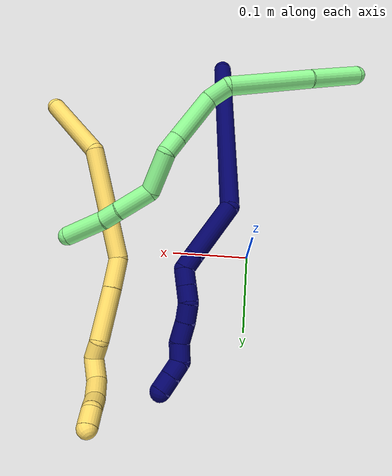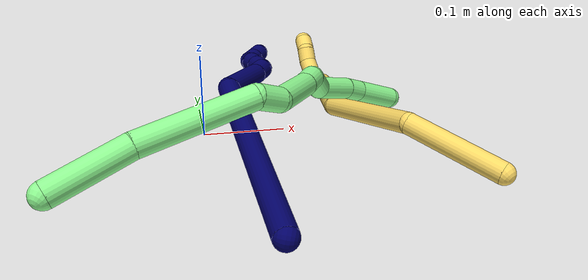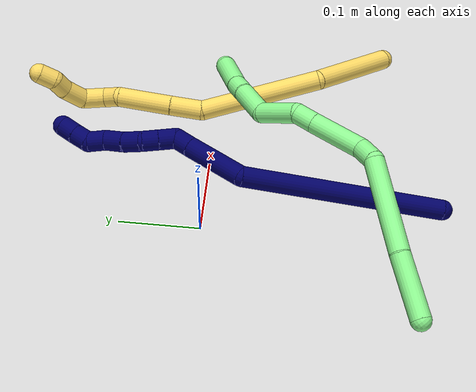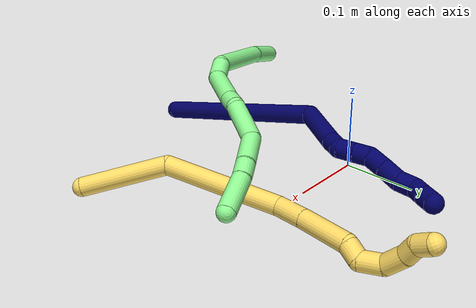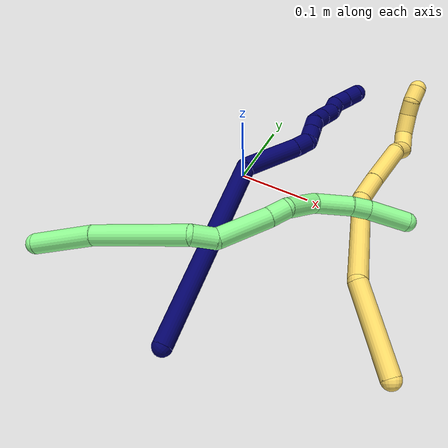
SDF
<sdf version="1.7">
 <world name="default">
  <model name="photoneo_s_sensor">
   <static>1</static>
   <pose>0 0 2 1.57079 1.57079 3.14159</pose>
   <link name="link">
    <inertial><mass>0.1</mass></inertial>
    <sensor name="sensor" type="depth">
     <update_rate>30</update_rate>
     <camera>
      <horizontal_fov>1.22</horizontal_fov>
      <image><width>1920</width><height>1200</height><format>B8G8R8</format></image>
      <clip><near>0.1</near><far>4</far></clip>
      <depth_camera><output>points</output></depth_camera>
     </camera>
     <plugin name="camera_plugin" filename="libgazebo_ros_depth_camera.so">
      <baseline>0.2</baseline>
      <alwaysOn>1</alwaysOn>
      <updateRate>0.0</updateRate>
      <cameraName>camera_ir</cameraName>
      <imageTopicName>/camera/color/image_raw</imageTopicName>
      <cameraInfoTopicName>/camera/color/camera_info</cameraInfoTopicName>
      <depthImageTopicName>/camera/depth/image_raw</depthImageTopicName>
      <depthImageCameraInfoTopicName>/camera/depth/camera_info</depthImageCameraInfoTopicName>
      <pointCloudTopicName>/camera/depth/points</pointCloudTopicName>
      <frameName>fr_optical</frameName>
      <pointCloudCutoff>0.1</pointCloudCutoff>
      <pointCloudCutoffMax>2.0</pointCloudCutoffMax>
      <distortionK1>0</distortionK1>
      <distortionK2>0</distortionK2>
      <distortionK3>0</distortionK3>
      <distortionT1>0</distortionT1>
      <distortionT2>0</distortionT2>
      <CxPrime>0</CxPrime>
      <Cx>0</Cx>
      <Cy>0</Cy>
      <focalLength>0</focalLength>
      <hackBaseline>0</hackBaseline>
     </plugin>
    </sensor>
   </link>
  </model>
  <model name="bin">
   <static>1</static>
   <link name="bottom">
    <collision name="collision-bottom">
     <pose>0 0 -0.01 0 -0 0</pose>
     <geometry><box><size>0.8 0.6 0.02</size></box></geometry>
     <surface>
      <friction><ode><mu>100</mu><mu2>100</mu2></ode></friction>
      <contact><collide_bitmask>65535</collide_bitmask></contact>
     </surface>
    </collision>
   </link>
   <link name="west_wall">
    <collision name="collision-west_wall">
     <pose>-0.41 0 0.1 0 -0 0</pose>
     <geometry><box><size>0.02 0.6 0.2</size></box></geometry>
     <surface>
      <friction><ode><mu>100</mu><mu2>100</mu2></ode></friction>
      <contact><collide_bitmask>65535</collide_bitmask></contact>
     </surface>
    </collision>
   </link>
   <link name="east_wall">
    <collision name="collision-east_wall">
     <pose>0.41 0 0.1 0 -0 0</pose>
     <geometry><box><size>0.02 0.6 0.2</size></box></geometry>
     <surface>
      <friction><ode><mu>100</mu><mu2>100</mu2></ode></friction>
      <contact><collide_bitmask>65535</collide_bitmask></contact>
     </surface>
    </collision>
   </link>
   <link name="south_wall">
    <collision name="collision-south_wall">
     <pose>0 -0.31 0.1 0 -0 0</pose>
     <geometry><box><size>0.8 0.02 0.2</size></box></geometry>
     <surface>
      <friction><ode><mu>100</mu><mu2>100</mu2></ode></friction>
      <contact><collide_bitmask>65535</collide_bitmask></contact>
     </surface>
    </collision>
   </link>
   <link name="north_wall">
    <collision name="collision-north_wall">
     <pose>0 0.31 0.1 0 -0 0</pose>
     <geometry><box><size>0.8 0.02 0.2</size></box></geometry>
     <surface>
      <friction><ode><mu>100</mu><mu2>100</mu2></ode></friction>
      <contact><collide_bitmask>65535</collide_bitmask></contact>
     </surface>
    </collision>
   </link>
  </model>
  <model name="5">
   <static>0</static>
   <link name="5">
    <collision name="collision-cylinder-e_1_1_4">
     <pose>-0.012774 0.010814 0.054778 -0.194907 -0.224903 0.02208</pose>
     <geometry><cylinder><radius>0.0125</radius><length>0.114555</length></cylinder></geometry>
     <surface>
      <friction><ode><mu>1.16</mu><mu2>1.16</mu2><slip1>0</slip1><slip2>0</slip2></ode></friction>
      <contact><ode><kp>1e+06</kp><kd>1</kd><max_vel>0</max_vel><min_depth>0.001</min_depth></ode></contact>
     </surface>
    </collision>
    <visual name="visual-cylinder-e_1_1_4">
     <pose>-0.012774 0.010814 0.054778 -0.194907 -0.224903 0.02208</pose>
     <geometry><cylinder><radius>0.0125</radius><length>0.114555</length></cylinder></geometry>
     <material><ambient>1 0.858824 0.4 1</ambient></material>
    </visual>
    <collision name="collision-cylinder-e_2_4_5">
     <pose>-0.015383 0.06917 0.168674 -0.677287 0.133189 -0.046971</pose>
     <geometry><cylinder><radius>0.0125</radius><length>0.153082</length></cylinder></geometry>
     <surface>
      <friction><ode><mu>1.16</mu><mu2>1.16</mu2><slip1>0</slip1><slip2>0</slip2></ode></friction>
      <contact><ode><kp>1e+06</kp><kd>1</kd><max_vel>0</max_vel><min_depth>0.001</min_depth></ode></contact>
     </surface>
    </collision>
    <visual name="visual-cylinder-e_2_4_5">
     <pose>-0.015383 0.06917 0.168674 -0.677287 0.133189 -0.046971</pose>
     <geometry><cylinder><radius>0.0125</radius><length>0.153082</length></cylinder></geometry>
     <material><ambient>1 0.858824 0.4 1</ambient></material>
    </visual>
    <collision name="collision-cylinder-e_3_5_6">
     <pose>0.005355 0.125841 0.242483 -0.556004 0.548723 -0.160309</pose>
     <geometry><cylinder><radius>0.0125</radius><length>0.040545</length></cylinder></geometry>
     <surface>
      <friction><ode><mu>1.16</mu><mu2>1.16</mu2><slip1>0</slip1><slip2>0</slip2></ode></friction>
      <contact><ode><kp>1e+06</kp><kd>1</kd><max_vel>0</max_vel><min_depth>0.001</min_depth></ode></contact>
     </surface>
    </collision>
    <visual name="visual-cylinder-e_3_5_6">
     <pose>0.005355 0.125841 0.242483 -0.556004 0.548723 -0.160309</pose>
     <geometry><cylinder><radius>0.0125</radius><length>0.040545</length></cylinder></geometry>
     <material><ambient>1 0.858824 0.4 1</ambient></material>
    </visual>
    <collision name="collision-cylinder-e_4_6_7">
     <pose>0.034511 0.150695 0.28094 -0.584546 0.577815 -0.178389</pose>
     <geometry><cylinder><radius>0.0125</radius><length>0.068042</length></cylinder></geometry>
     <surface>
      <friction><ode><mu>1.16</mu><mu2>1.16</mu2><slip1>0</slip1><slip2>0</slip2></ode></friction>
      <contact><ode><kp>1e+06</kp><kd>1</kd><max_vel>0</max_vel><min_depth>0.001</min_depth></ode></contact>
     </surface>
    </collision>
    <visual name="visual-cylinder-e_4_6_7">
     <pose>0.034511 0.150695 0.28094 -0.584546 0.577815 -0.178389</pose>
     <geometry><cylinder><radius>0.0125</radius><length>0.068042</length></cylinder></geometry>
     <material><ambient>1 0.858824 0.4 1</ambient></material>
    </visual>
    <collision name="collision-cylinder-e_5_7_8">
     <pose>0.0595 0.175043 0.308446 -1.16163 0.598337 -0.399464</pose>
     <geometry><cylinder><radius>0.0125</radius><length>0.022748</length></cylinder></geometry>
     <surface>
      <friction><ode><mu>1.16</mu><mu2>1.16</mu2><slip1>0</slip1><slip2>0</slip2></ode></friction>
      <contact><ode><kp>1e+06</kp><kd>1</kd><max_vel>0</max_vel><min_depth>0.001</min_depth></ode></contact>
     </surface>
    </collision>
    <visual name="visual-cylinder-e_5_7_8">
     <pose>0.0595 0.175043 0.308446 -1.16163 0.598337 -0.399464</pose>
     <geometry><cylinder><radius>0.0125</radius><length>0.022748</length></cylinder></geometry>
     <material><ambient>1 0.858824 0.4 1</ambient></material>
    </visual>
    <collision name="collision-cylinder-e_6_8_9">
     <pose>0.068758 0.189498 0.325253 -0.419769 0.196672 -0.042025</pose>
     <geometry><cylinder><radius>0.0125</radius><length>0.029185</length></cylinder></geometry>
     <surface>
      <friction><ode><mu>1.16</mu><mu2>1.16</mu2><slip1>0</slip1><slip2>0</slip2></ode></friction>
      <contact><ode><kp>1e+06</kp><kd>1</kd><max_vel>0</max_vel><min_depth>0.001</min_depth></ode></contact>
     </surface>
    </collision>
    <visual name="visual-cylinder-e_6_8_9">
     <pose>0.068758 0.189498 0.325253 -0.419769 0.196672 -0.042025</pose>
     <geometry><cylinder><radius>0.0125</radius><length>0.029185</length></cylinder></geometry>
     <material><ambient>1 0.858824 0.4 1</ambient></material>
    </visual>
    <collision name="collision-cylinder-e_7_9_10">
     <pose>0.075637 0.191928 0.352438 0.236537 0.270537 0.032341</pose>
     <geometry><cylinder><radius>0.0125</radius><length>0.030137</length></cylinder></geometry>
     <surface>
      <friction><ode><mu>1.16</mu><mu2>1.16</mu2><slip1>0</slip1><slip2>0</slip2></ode></friction>
      <contact><ode><kp>1e+06</kp><kd>1</kd><max_vel>0</max_vel><min_depth>0.001</min_depth></ode></contact>
     </surface>
    </collision>
    <visual name="visual-cylinder-e_7_9_10">
     <pose>0.075637 0.191928 0.352438 0.236537 0.270537 0.032341</pose>
     <geometry><cylinder><radius>0.0125</radius><length>0.030137</length></cylinder></geometry>
     <material><ambient>1 0.858824 0.4 1</ambient></material>
    </visual>
    <collision name="collision-cylinder-e_8_10_11">
     <pose>0.082564 0.183703 0.374979 0.519927 0.290277 0.077716</pose>
     <geometry><cylinder><radius>0.0125</radius><length>0.020262</length></cylinder></geometry>
     <surface>
      <friction><ode><mu>1.16</mu><mu2>1.16</mu2><slip1>0</slip1><slip2>0</slip2></ode></friction>
      <contact><ode><kp>1e+06</kp><kd>1</kd><max_vel>0</max_vel><min_depth>0.001</min_depth></ode></contact>
     </surface>
    </collision>
    <visual name="visual-cylinder-e_8_10_11">
     <pose>0.082564 0.183703 0.374979 0.519927 0.290277 0.077716</pose>
     <geometry><cylinder><radius>0.0125</radius><length>0.020262</length></cylinder></geometry>
     <material><ambient>1 0.858824 0.4 1</ambient></material>
    </visual>
    <collision name="collision-cylinder-e_9_11_2">
     <pose>0.09049 0.178941 0.392873 -0.006386 0.487995 -0.00159</pose>
     <geometry><cylinder><radius>0.0125</radius><length>0.021444</length></cylinder></geometry>
     <surface>
      <friction><ode><mu>1.16</mu><mu2>1.16</mu2><slip1>0</slip1><slip2>0</slip2></ode></friction>
      <contact><ode><kp>1e+06</kp><kd>1</kd><max_vel>0</max_vel><min_depth>0.001</min_depth></ode></contact>
     </surface>
    </collision>
    <visual name="visual-cylinder-e_9_11_2">
     <pose>0.09049 0.178941 0.392873 -0.006386 0.487995 -0.00159</pose>
     <geometry><cylinder><radius>0.0125</radius><length>0.021444</length></cylinder></geometry>
     <material><ambient>1 0.858824 0.4 1</ambient></material>
    </visual>
    <collision name="collision-sphere-2">
     <pose>0.095517 0.179001 0.402344 0 -0 0</pose>
     <geometry><sphere><radius>0.0125</radius></sphere></geometry>
     <surface>
      <friction><ode><mu>1.16</mu><mu2>1.16</mu2><slip1>0</slip1><slip2>0</slip2></ode></friction>
      <contact><ode><kp>1e+06</kp><kd>1</kd><max_vel>0</max_vel><min_depth>0.001</min_depth></ode></contact>
     </surface>
    </collision>
    <visual name="visual-sphere-2">
     <pose>0.095517 0.179001 0.402344 0 -0 0</pose>
     <geometry><sphere><radius>0.0125</radius></sphere></geometry>
     <material><ambient>1 0.858824 0.4 1</ambient></material>
    </visual>
    <collision name="collision-sphere-11">
     <pose>0.085463 0.17888 0.383403 0 -0 0</pose>
     <geometry><sphere><radius>0.0125</radius></sphere></geometry>
     <surface>
      <friction><ode><mu>1.16</mu><mu2>1.16</mu2><slip1>0</slip1><slip2>0</slip2></ode></friction>
      <contact><ode><kp>1e+06</kp><kd>1</kd><max_vel>0</max_vel><min_depth>0.001</min_depth></ode></contact>
     </surface>
    </collision>
    <visual name="visual-sphere-11">
     <pose>0.085463 0.17888 0.383403 0 -0 0</pose>
     <geometry><sphere><radius>0.0125</radius></sphere></geometry>
     <material><ambient>1 0.858824 0.4 1</ambient></material>
    </visual>
    <collision name="collision-sphere-10">
     <pose>0.079664 0.188525 0.366554 0 -0 0</pose>
     <geometry><sphere><radius>0.0125</radius></sphere></geometry>
     <surface>
      <friction><ode><mu>1.16</mu><mu2>1.16</mu2><slip1>0</slip1><slip2>0</slip2></ode></friction>
      <contact><ode><kp>1e+06</kp><kd>1</kd><max_vel>0</max_vel><min_depth>0.001</min_depth></ode></contact>
     </surface>
    </collision>
    <visual name="visual-sphere-10">
     <pose>0.079664 0.188525 0.366554 0 -0 0</pose>
     <geometry><sphere><radius>0.0125</radius></sphere></geometry>
     <material><ambient>1 0.858824 0.4 1</ambient></material>
    </visual>
    <collision name="collision-sphere-9">
     <pose>0.07161 0.195331 0.338322 0 -0 0</pose>
     <geometry><sphere><radius>0.0125</radius></sphere></geometry>
     <surface>
      <friction><ode><mu>1.16</mu><mu2>1.16</mu2><slip1>0</slip1><slip2>0</slip2></ode></friction>
      <contact><ode><kp>1e+06</kp><kd>1</kd><max_vel>0</max_vel><min_depth>0.001</min_depth></ode></contact>
     </surface>
    </collision>
    <visual name="visual-sphere-9">
     <pose>0.07161 0.195331 0.338322 0 -0 0</pose>
     <geometry><sphere><radius>0.0125</radius></sphere></geometry>
     <material><ambient>1 0.858824 0.4 1</ambient></material>
    </visual>
    <collision name="collision-sphere-4">
     <pose>-0.025547 0.021628 0.109556 0 -0 0</pose>
     <geometry><sphere><radius>0.0125</radius></sphere></geometry>
     <surface>
      <friction><ode><mu>1.16</mu><mu2>1.16</mu2><slip1>0</slip1><slip2>0</slip2></ode></friction>
      <contact><ode><kp>1e+06</kp><kd>1</kd><max_vel>0</max_vel><min_depth>0.001</min_depth></ode></contact>
     </surface>
    </collision>
    <visual name="visual-sphere-4">
     <pose>-0.025547 0.021628 0.109556 0 -0 0</pose>
     <geometry><sphere><radius>0.0125</radius></sphere></geometry>
     <material><ambient>1 0.858824 0.4 1</ambient></material>
    </visual>
    <collision name="collision-sphere-1">
     <geometry><sphere><radius>0.0125</radius></sphere></geometry>
     <surface>
      <friction><ode><mu>1.16</mu><mu2>1.16</mu2><slip1>0</slip1><slip2>0</slip2></ode></friction>
      <contact><ode><kp>1e+06</kp><kd>1</kd><max_vel>0</max_vel><min_depth>0.001</min_depth></ode></contact>
     </surface>
    </collision>
    <visual name="visual-sphere-1">
     <geometry><sphere><radius>0.0125</radius></sphere></geometry>
     <material><ambient>1 0.858824 0.4 1</ambient></material>
    </visual>
    <collision name="collision-sphere-8">
     <pose>0.065907 0.183666 0.312185 0 -0 0</pose>
     <geometry><sphere><radius>0.0125</radius></sphere></geometry>
     <surface>
      <friction><ode><mu>1.16</mu><mu2>1.16</mu2><slip1>0</slip1><slip2>0</slip2></ode></friction>
      <contact><ode><kp>1e+06</kp><kd>1</kd><max_vel>0</max_vel><min_depth>0.001</min_depth></ode></contact>
     </surface>
    </collision>
    <visual name="visual-sphere-8">
     <pose>0.065907 0.183666 0.312185 0 -0 0</pose>
     <geometry><sphere><radius>0.0125</radius></sphere></geometry>
     <material><ambient>1 0.858824 0.4 1</ambient></material>
    </visual>
    <collision name="collision-sphere-5">
     <pose>-0.005219 0.116712 0.227792 0 -0 0</pose>
     <geometry><sphere><radius>0.0125</radius></sphere></geometry>
     <surface>
      <friction><ode><mu>1.16</mu><mu2>1.16</mu2><slip1>0</slip1><slip2>0</slip2></ode></friction>
      <contact><ode><kp>1e+06</kp><kd>1</kd><max_vel>0</max_vel><min_depth>0.001</min_depth></ode></contact>
     </surface>
    </collision>
    <visual name="visual-sphere-5">
     <pose>-0.005219 0.116712 0.227792 0 -0 0</pose>
     <geometry><sphere><radius>0.0125</radius></sphere></geometry>
     <material><ambient>1 0.858824 0.4 1</ambient></material>
    </visual>
    <collision name="collision-sphere-6">
     <pose>0.015929 0.134969 0.257174 0 -0 0</pose>
     <geometry><sphere><radius>0.0125</radius></sphere></geometry>
     <surface>
      <friction><ode><mu>1.16</mu><mu2>1.16</mu2><slip1>0</slip1><slip2>0</slip2></ode></friction>
      <contact><ode><kp>1e+06</kp><kd>1</kd><max_vel>0</max_vel><min_depth>0.001</min_depth></ode></contact>
     </surface>
    </collision>
    <visual name="visual-sphere-6">
     <pose>0.015929 0.134969 0.257174 0 -0 0</pose>
     <geometry><sphere><radius>0.0125</radius></sphere></geometry>
     <material><ambient>1 0.858824 0.4 1</ambient></material>
    </visual>
    <collision name="collision-sphere-7">
     <pose>0.053094 0.166421 0.304707 0 -0 0</pose>
     <geometry><sphere><radius>0.0125</radius></sphere></geometry>
     <surface>
      <friction><ode><mu>1.16</mu><mu2>1.16</mu2><slip1>0</slip1><slip2>0</slip2></ode></friction>
      <contact><ode><kp>1e+06</kp><kd>1</kd><max_vel>0</max_vel><min_depth>0.001</min_depth></ode></contact>
     </surface>
    </collision>
    <visual name="visual-sphere-7">
     <pose>0.053094 0.166421 0.304707 0 -0 0</pose>
     <geometry><sphere><radius>0.0125</radius></sphere></geometry>
     <material><ambient>1 0.858824 0.4 1</ambient></material>
    </visual>
    <inertial>
     <pose>0.016001 0.100078 0.208393 0 -0 0</pose>
     <mass>0.5</mass>
     <inertia>
      <ixx>0.000459</ixx>
      <ixy>0</ixy>
      <ixz>0</ixz>
      <iyy>0.000405</iyy>
      <iyz>0</iyz>
      <izz>-0.000235</izz>
     </inertia>
    </inertial>
   </link>
   <pose>0.290848 -0.207774 0.011889 -1.06097 -0.114097 0.466865</pose>
  </model>
  <model name="7">
   <static>0</static>
   <link name="7">
    <collision name="collision-cylinder-e_1_1_4">
     <pose>0.011509 0.114995 -0.048051 -1.9666 0.092087 -0.138159</pose>
     <geometry><cylinder><radius>0.0125</radius><length>0.250321</length></cylinder></geometry>
     <surface>
      <friction><ode><mu>1.16</mu><mu2>1.16</mu2><slip1>0</slip1><slip2>0</slip2></ode></friction>
      <contact><ode><kp>1e+06</kp><kd>1</kd><max_vel>0</max_vel><min_depth>0.001</min_depth></ode></contact>
     </surface>
    </collision>
    <visual name="visual-cylinder-e_1_1_4">
     <pose>0.011509 0.114995 -0.048051 -1.9666 0.092087 -0.138159</pose>
     <geometry><cylinder><radius>0.0125</radius><length>0.250321</length></cylinder></geometry>
     <material><ambient>0.003922 0 0.403922 1</ambient></material>
    </visual>
    <collision name="collision-cylinder-e_2_4_5">
     <pose>0.03298 0.265373 -0.085703 -1.28496 0.26381 -0.197942</pose>
     <geometry><cylinder><radius>0.0125</radius><length>0.076401</length></cylinder></geometry>
     <surface>
      <friction><ode><mu>1.16</mu><mu2>1.16</mu2><slip1>0</slip1><slip2>0</slip2></ode></friction>
      <contact><ode><kp>1e+06</kp><kd>1</kd><max_vel>0</max_vel><min_depth>0.001</min_depth></ode></contact>
     </surface>
    </collision>
    <visual name="visual-cylinder-e_2_4_5">
     <pose>0.03298 0.265373 -0.085703 -1.28496 0.26381 -0.197942</pose>
     <geometry><cylinder><radius>0.0125</radius><length>0.076401</length></cylinder></geometry>
     <material><ambient>0.003922 0 0.403922 1</ambient></material>
    </visual>
    <collision name="collision-cylinder-e_3_5_6">
     <pose>0.044875 0.311059 -0.072864 -1.33818 0.180611 -0.142968</pose>
     <geometry><cylinder><radius>0.0125</radius><length>0.021528</length></cylinder></geometry>
     <surface>
      <friction><ode><mu>1.16</mu><mu2>1.16</mu2><slip1>0</slip1><slip2>0</slip2></ode></friction>
      <contact><ode><kp>1e+06</kp><kd>1</kd><max_vel>0</max_vel><min_depth>0.001</min_depth></ode></contact>
     </surface>
    </collision>
    <visual name="visual-cylinder-e_3_5_6">
     <pose>0.044875 0.311059 -0.072864 -1.33818 0.180611 -0.142968</pose>
     <geometry><cylinder><radius>0.0125</radius><length>0.021528</length></cylinder></geometry>
     <material><ambient>0.003922 0 0.403922 1</ambient></material>
    </visual>
    <collision name="collision-cylinder-e_4_6_7">
     <pose>0.05058 0.330113 -0.075257 -2.0755 0.360767 -0.599541</pose>
     <geometry><cylinder><radius>0.0125</radius><length>0.021368</length></cylinder></geometry>
     <surface>
      <friction><ode><mu>1.16</mu><mu2>1.16</mu2><slip1>0</slip1><slip2>0</slip2></ode></friction>
      <contact><ode><kp>1e+06</kp><kd>1</kd><max_vel>0</max_vel><min_depth>0.001</min_depth></ode></contact>
     </surface>
    </collision>
    <visual name="visual-cylinder-e_4_6_7">
     <pose>0.05058 0.330113 -0.075257 -2.0755 0.360767 -0.599541</pose>
     <geometry><cylinder><radius>0.0125</radius><length>0.021368</length></cylinder></geometry>
     <material><ambient>0.003922 0 0.403922 1</ambient></material>
    </visual>
    <collision name="collision-cylinder-e_5_7_8">
     <pose>0.057832 0.347118 -0.084663 -2.07663 0.353394 -0.588459</pose>
     <geometry><cylinder><radius>0.0125</radius><length>0.020116</length></cylinder></geometry>
     <surface>
      <friction><ode><mu>1.16</mu><mu2>1.16</mu2><slip1>0</slip1><slip2>0</slip2></ode></friction>
      <contact><ode><kp>1e+06</kp><kd>1</kd><max_vel>0</max_vel><min_depth>0.001</min_depth></ode></contact>
     </surface>
    </collision>
    <visual name="visual-cylinder-e_5_7_8">
     <pose>0.057832 0.347118 -0.084663 -2.07663 0.353394 -0.588459</pose>
     <geometry><cylinder><radius>0.0125</radius><length>0.020116</length></cylinder></geometry>
     <material><ambient>0.003922 0 0.403922 1</ambient></material>
    </visual>
    <collision name="collision-cylinder-e_6_8_9">
     <pose>0.067893 0.364691 -0.090573 -1.71339 0.610048 -0.696913</pose>
     <geometry><cylinder><radius>0.0125</radius><length>0.022972</length></cylinder></geometry>
     <surface>
      <friction><ode><mu>1.16</mu><mu2>1.16</mu2><slip1>0</slip1><slip2>0</slip2></ode></friction>
      <contact><ode><kp>1e+06</kp><kd>1</kd><max_vel>0</max_vel><min_depth>0.001</min_depth></ode></contact>
     </surface>
    </collision>
    <visual name="visual-cylinder-e_6_8_9">
     <pose>0.067893 0.364691 -0.090573 -1.71339 0.610048 -0.696913</pose>
     <geometry><cylinder><radius>0.0125</radius><length>0.022972</length></cylinder></geometry>
     <material><ambient>0.003922 0 0.403922 1</ambient></material>
    </visual>
    <collision name="collision-cylinder-e_7_9_10">
     <pose>0.080894 0.384929 -0.09207 -1.58537 0.531507 -0.538943</pose>
     <geometry><cylinder><radius>0.0125</radius><length>0.025336</length></cylinder></geometry>
     <surface>
      <friction><ode><mu>1.16</mu><mu2>1.16</mu2><slip1>0</slip1><slip2>0</slip2></ode></friction>
      <contact><ode><kp>1e+06</kp><kd>1</kd><max_vel>0</max_vel><min_depth>0.001</min_depth></ode></contact>
     </surface>
    </collision>
    <visual name="visual-cylinder-e_7_9_10">
     <pose>0.080894 0.384929 -0.09207 -1.58537 0.531507 -0.538943</pose>
     <geometry><cylinder><radius>0.0125</radius><length>0.025336</length></cylinder></geometry>
     <material><ambient>0.003922 0 0.403922 1</ambient></material>
    </visual>
    <collision name="collision-cylinder-e_8_10_11">
     <pose>0.092204 0.404863 -0.096109 -1.97719 0.462144 -0.686481</pose>
     <geometry><cylinder><radius>0.0125</radius><length>0.02193</length></cylinder></geometry>
     <surface>
      <friction><ode><mu>1.16</mu><mu2>1.16</mu2><slip1>0</slip1><slip2>0</slip2></ode></friction>
      <contact><ode><kp>1e+06</kp><kd>1</kd><max_vel>0</max_vel><min_depth>0.001</min_depth></ode></contact>
     </surface>
    </collision>
    <visual name="visual-cylinder-e_8_10_11">
     <pose>0.092204 0.404863 -0.096109 -1.97719 0.462144 -0.686481</pose>
     <geometry><cylinder><radius>0.0125</radius><length>0.02193</length></cylinder></geometry>
     <material><ambient>0.003922 0 0.403922 1</ambient></material>
    </visual>
    <collision name="collision-cylinder-e_9_11_12">
     <pose>0.098967 0.423456 -0.097791 -1.3453 0.188515 -0.150329</pose>
     <geometry><cylinder><radius>0.0125</radius><length>0.020008</length></cylinder></geometry>
     <surface>
      <friction><ode><mu>1.16</mu><mu2>1.16</mu2><slip1>0</slip1><slip2>0</slip2></ode></friction>
      <contact><ode><kp>1e+06</kp><kd>1</kd><max_vel>0</max_vel><min_depth>0.001</min_depth></ode></contact>
     </surface>
    </collision>
    <visual name="visual-cylinder-e_9_11_12">
     <pose>0.098967 0.423456 -0.097791 -1.3453 0.188515 -0.150329</pose>
     <geometry><cylinder><radius>0.0125</radius><length>0.020008</length></cylinder></geometry>
     <material><ambient>0.003922 0 0.403922 1</ambient></material>
    </visual>
    <collision name="collision-cylinder-e_10_12_2">
     <pose>0.102288 0.44269 -0.093386 -1.34604 0.144969 -0.11564</pose>
     <geometry><cylinder><radius>0.0125</radius><length>0.02002</length></cylinder></geometry>
     <surface>
      <friction><ode><mu>1.16</mu><mu2>1.16</mu2><slip1>0</slip1><slip2>0</slip2></ode></friction>
      <contact><ode><kp>1e+06</kp><kd>1</kd><max_vel>0</max_vel><min_depth>0.001</min_depth></ode></contact>
     </surface>
    </collision>
    <visual name="visual-cylinder-e_10_12_2">
     <pose>0.102288 0.44269 -0.093386 -1.34604 0.144969 -0.11564</pose>
     <geometry><cylinder><radius>0.0125</radius><length>0.02002</length></cylinder></geometry>
     <material><ambient>0.003922 0 0.403922 1</ambient></material>
    </visual>
    <collision name="collision-sphere-2">
     <pose>0.103734 0.452346 -0.091179 0 -0 0</pose>
     <geometry><sphere><radius>0.0125</radius></sphere></geometry>
     <surface>
      <friction><ode><mu>1.16</mu><mu2>1.16</mu2><slip1>0</slip1><slip2>0</slip2></ode></friction>
      <contact><ode><kp>1e+06</kp><kd>1</kd><max_vel>0</max_vel><min_depth>0.001</min_depth></ode></contact>
     </surface>
    </collision>
    <visual name="visual-sphere-2">
     <pose>0.103734 0.452346 -0.091179 0 -0 0</pose>
     <geometry><sphere><radius>0.0125</radius></sphere></geometry>
     <material><ambient>0.003922 0 0.403922 1</ambient></material>
    </visual>
    <collision name="collision-sphere-12">
     <pose>0.100842 0.433034 -0.095594 0 -0 0</pose>
     <geometry><sphere><radius>0.0125</radius></sphere></geometry>
     <surface>
      <friction><ode><mu>1.16</mu><mu2>1.16</mu2><slip1>0</slip1><slip2>0</slip2></ode></friction>
      <contact><ode><kp>1e+06</kp><kd>1</kd><max_vel>0</max_vel><min_depth>0.001</min_depth></ode></contact>
     </surface>
    </collision>
    <visual name="visual-sphere-12">
     <pose>0.100842 0.433034 -0.095594 0 -0 0</pose>
     <geometry><sphere><radius>0.0125</radius></sphere></geometry>
     <material><ambient>0.003922 0 0.403922 1</ambient></material>
    </visual>
    <collision name="collision-sphere-11">
     <pose>0.097092 0.413878 -0.099988 0 -0 0</pose>
     <geometry><sphere><radius>0.0125</radius></sphere></geometry>
     <surface>
      <friction><ode><mu>1.16</mu><mu2>1.16</mu2><slip1>0</slip1><slip2>0</slip2></ode></friction>
      <contact><ode><kp>1e+06</kp><kd>1</kd><max_vel>0</max_vel><min_depth>0.001</min_depth></ode></contact>
     </surface>
    </collision>
    <visual name="visual-sphere-11">
     <pose>0.097092 0.413878 -0.099988 0 -0 0</pose>
     <geometry><sphere><radius>0.0125</radius></sphere></geometry>
     <material><ambient>0.003922 0 0.403922 1</ambient></material>
    </visual>
    <collision name="collision-sphere-10">
     <pose>0.087315 0.395848 -0.092229 0 -0 0</pose>
     <geometry><sphere><radius>0.0125</radius></sphere></geometry>
     <surface>
      <friction><ode><mu>1.16</mu><mu2>1.16</mu2><slip1>0</slip1><slip2>0</slip2></ode></friction>
      <contact><ode><kp>1e+06</kp><kd>1</kd><max_vel>0</max_vel><min_depth>0.001</min_depth></ode></contact>
     </surface>
    </collision>
    <visual name="visual-sphere-10">
     <pose>0.087315 0.395848 -0.092229 0 -0 0</pose>
     <geometry><sphere><radius>0.0125</radius></sphere></geometry>
     <material><ambient>0.003922 0 0.403922 1</ambient></material>
    </visual>
    <collision name="collision-sphere-9">
     <pose>0.074474 0.37401 -0.09191 0 -0 0</pose>
     <geometry><sphere><radius>0.0125</radius></sphere></geometry>
     <surface>
      <friction><ode><mu>1.16</mu><mu2>1.16</mu2><slip1>0</slip1><slip2>0</slip2></ode></friction>
      <contact><ode><kp>1e+06</kp><kd>1</kd><max_vel>0</max_vel><min_depth>0.001</min_depth></ode></contact>
     </surface>
    </collision>
    <visual name="visual-sphere-9">
     <pose>0.074474 0.37401 -0.09191 0 -0 0</pose>
     <geometry><sphere><radius>0.0125</radius></sphere></geometry>
     <material><ambient>0.003922 0 0.403922 1</ambient></material>
    </visual>
    <collision name="collision-sphere-4">
     <pose>0.023019 0.22999 -0.096102 0 -0 0</pose>
     <geometry><sphere><radius>0.0125</radius></sphere></geometry>
     <surface>
      <friction><ode><mu>1.16</mu><mu2>1.16</mu2><slip1>0</slip1><slip2>0</slip2></ode></friction>
      <contact><ode><kp>1e+06</kp><kd>1</kd><max_vel>0</max_vel><min_depth>0.001</min_depth></ode></contact>
     </surface>
    </collision>
    <visual name="visual-sphere-4">
     <pose>0.023019 0.22999 -0.096102 0 -0 0</pose>
     <geometry><sphere><radius>0.0125</radius></sphere></geometry>
     <material><ambient>0.003922 0 0.403922 1</ambient></material>
    </visual>
    <collision name="collision-sphere-1">
     <geometry><sphere><radius>0.0125</radius></sphere></geometry>
     <surface>
      <friction><ode><mu>1.16</mu><mu2>1.16</mu2><slip1>0</slip1><slip2>0</slip2></ode></friction>
      <contact><ode><kp>1e+06</kp><kd>1</kd><max_vel>0</max_vel><min_depth>0.001</min_depth></ode></contact>
     </surface>
    </collision>
    <visual name="visual-sphere-1">
     <geometry><sphere><radius>0.0125</radius></sphere></geometry>
     <material><ambient>0.003922 0 0.403922 1</ambient></material>
    </visual>
    <collision name="collision-sphere-8">
     <pose>0.061313 0.355373 -0.089235 0 -0 0</pose>
     <geometry><sphere><radius>0.0125</radius></sphere></geometry>
     <surface>
      <friction><ode><mu>1.16</mu><mu2>1.16</mu2><slip1>0</slip1><slip2>0</slip2></ode></friction>
      <contact><ode><kp>1e+06</kp><kd>1</kd><max_vel>0</max_vel><min_depth>0.001</min_depth></ode></contact>
     </surface>
    </collision>
    <visual name="visual-sphere-8">
     <pose>0.061313 0.355373 -0.089235 0 -0 0</pose>
     <geometry><sphere><radius>0.0125</radius></sphere></geometry>
     <material><ambient>0.003922 0 0.403922 1</ambient></material>
    </visual>
    <collision name="collision-sphere-5">
     <pose>0.042941 0.300755 -0.075305 0 -0 0</pose>
     <geometry><sphere><radius>0.0125</radius></sphere></geometry>
     <surface>
      <friction><ode><mu>1.16</mu><mu2>1.16</mu2><slip1>0</slip1><slip2>0</slip2></ode></friction>
      <contact><ode><kp>1e+06</kp><kd>1</kd><max_vel>0</max_vel><min_depth>0.001</min_depth></ode></contact>
     </surface>
    </collision>
    <visual name="visual-sphere-5">
     <pose>0.042941 0.300755 -0.075305 0 -0 0</pose>
     <geometry><sphere><radius>0.0125</radius></sphere></geometry>
     <material><ambient>0.003922 0 0.403922 1</ambient></material>
    </visual>
    <collision name="collision-sphere-6">
     <pose>0.046808 0.321363 -0.070423 0 -0 0</pose>
     <geometry><sphere><radius>0.0125</radius></sphere></geometry>
     <surface>
      <friction><ode><mu>1.16</mu><mu2>1.16</mu2><slip1>0</slip1><slip2>0</slip2></ode></friction>
      <contact><ode><kp>1e+06</kp><kd>1</kd><max_vel>0</max_vel><min_depth>0.001</min_depth></ode></contact>
     </surface>
    </collision>
    <visual name="visual-sphere-6">
     <pose>0.046808 0.321363 -0.070423 0 -0 0</pose>
     <geometry><sphere><radius>0.0125</radius></sphere></geometry>
     <material><ambient>0.003922 0 0.403922 1</ambient></material>
    </visual>
    <collision name="collision-sphere-7">
     <pose>0.054351 0.338864 -0.08009 0 -0 0</pose>
     <geometry><sphere><radius>0.0125</radius></sphere></geometry>
     <surface>
      <friction><ode><mu>1.16</mu><mu2>1.16</mu2><slip1>0</slip1><slip2>0</slip2></ode></friction>
      <contact><ode><kp>1e+06</kp><kd>1</kd><max_vel>0</max_vel><min_depth>0.001</min_depth></ode></contact>
     </surface>
    </collision>
    <visual name="visual-sphere-7">
     <pose>0.054351 0.338864 -0.08009 0 -0 0</pose>
     <geometry><sphere><radius>0.0125</radius></sphere></geometry>
     <material><ambient>0.003922 0 0.403922 1</ambient></material>
    </visual>
    <inertial>
     <pose>0.03654 0.228274 -0.067606 0 -0 0</pose>
     <mass>0.5</mass>
     <inertia>
      <ixx>0.001162</ixx>
      <ixy>0</ixy>
      <ixz>0</ixz>
      <iyy>-0.000631</iyy>
      <iyz>0</iyz>
      <izz>-0.001403</izz>
     </inertia>
    </inertial>
   </link>
   <pose>0.049364 -0.288504 0.012499 2.14624 1.23228 1.83942</pose>
  </model>
  <model name="13">
   <static>0</static>
   <link name="13">
    <collision name="collision-cylinder-e_1_1_4">
     <pose>0.007699 0.016939 -0.034251 -2.68232 0.198823 -0.806582</pose>
     <geometry><cylinder><radius>0.0125</radius><length>0.077958</length></cylinder></geometry>
     <surface>
      <friction><ode><mu>1.16</mu><mu2>1.16</mu2><slip1>0</slip1><slip2>0</slip2></ode></friction>
      <contact><ode><kp>1e+06</kp><kd>1</kd><max_vel>0</max_vel><min_depth>0.001</min_depth></ode></contact>
     </surface>
    </collision>
    <visual name="visual-cylinder-e_1_1_4">
     <pose>0.007699 0.016939 -0.034251 -2.68232 0.198823 -0.806582</pose>
     <geometry><cylinder><radius>0.0125</radius><length>0.077958</length></cylinder></geometry>
     <material><ambient>0.564706 0.984314 0.572549 1</ambient></material>
    </visual>
    <collision name="collision-cylinder-e_2_4_5">
     <pose>0.03336 0.062855 -0.117002 -2.60302 0.307834 -1.02423</pose>
     <geometry><cylinder><radius>0.0125</radius><length>0.118567</length></cylinder></geometry>
     <surface>
      <friction><ode><mu>1.16</mu><mu2>1.16</mu2><slip1>0</slip1><slip2>0</slip2></ode></friction>
      <contact><ode><kp>1e+06</kp><kd>1</kd><max_vel>0</max_vel><min_depth>0.001</min_depth></ode></contact>
     </surface>
    </collision>
    <visual name="visual-cylinder-e_2_4_5">
     <pose>0.03336 0.062855 -0.117002 -2.60302 0.307834 -1.02423</pose>
     <geometry><cylinder><radius>0.0125</radius><length>0.118567</length></cylinder></geometry>
     <material><ambient>0.564706 0.984314 0.572549 1</ambient></material>
    </visual>
    <collision name="collision-cylinder-e_3_5_6">
     <pose>0.062691 0.094306 -0.175055 -2.88824 0.855872 -2.59703</pose>
     <geometry><cylinder><radius>0.0125</radius><length>0.030109</length></cylinder></geometry>
     <surface>
      <friction><ode><mu>1.16</mu><mu2>1.16</mu2><slip1>0</slip1><slip2>0</slip2></ode></friction>
      <contact><ode><kp>1e+06</kp><kd>1</kd><max_vel>0</max_vel><min_depth>0.001</min_depth></ode></contact>
     </surface>
    </collision>
    <visual name="visual-cylinder-e_3_5_6">
     <pose>0.062691 0.094306 -0.175055 -2.88824 0.855872 -2.59703</pose>
     <geometry><cylinder><radius>0.0125</radius><length>0.030109</length></cylinder></geometry>
     <material><ambient>0.564706 0.984314 0.572549 1</ambient></material>
    </visual>
    <collision name="collision-cylinder-e_4_6_7">
     <pose>0.090638 0.089525 -0.213539 2.89589 0.507319 2.25259</pose>
     <geometry><cylinder><radius>0.0125</radius><length>0.068247</length></cylinder></geometry>
     <surface>
      <friction><ode><mu>1.16</mu><mu2>1.16</mu2><slip1>0</slip1><slip2>0</slip2></ode></friction>
      <contact><ode><kp>1e+06</kp><kd>1</kd><max_vel>0</max_vel><min_depth>0.001</min_depth></ode></contact>
     </surface>
    </collision>
    <visual name="visual-cylinder-e_4_6_7">
     <pose>0.090638 0.089525 -0.213539 2.89589 0.507319 2.25259</pose>
     <geometry><cylinder><radius>0.0125</radius><length>0.068247</length></cylinder></geometry>
     <material><ambient>0.564706 0.984314 0.572549 1</ambient></material>
    </visual>
    <collision name="collision-cylinder-e_5_7_8">
     <pose>0.112186 0.079384 -0.25348 2.8852 0.4116 2.03524</pose>
     <geometry><cylinder><radius>0.0125</radius><length>0.02484</length></cylinder></geometry>
     <surface>
      <friction><ode><mu>1.16</mu><mu2>1.16</mu2><slip1>0</slip1><slip2>0</slip2></ode></friction>
      <contact><ode><kp>1e+06</kp><kd>1</kd><max_vel>0</max_vel><min_depth>0.001</min_depth></ode></contact>
     </surface>
    </collision>
    <visual name="visual-cylinder-e_5_7_8">
     <pose>0.112186 0.079384 -0.25348 2.8852 0.4116 2.03524</pose>
     <geometry><cylinder><radius>0.0125</radius><length>0.02484</length></cylinder></geometry>
     <material><ambient>0.564706 0.984314 0.572549 1</ambient></material>
    </visual>
    <collision name="collision-cylinder-e_6_8_9">
     <pose>0.137425 0.065618 -0.27842 2.47856 0.853701 1.84587</pose>
     <geometry><cylinder><radius>0.0125</radius><length>0.053788</length></cylinder></geometry>
     <surface>
      <friction><ode><mu>1.16</mu><mu2>1.16</mu2><slip1>0</slip1><slip2>0</slip2></ode></friction>
      <contact><ode><kp>1e+06</kp><kd>1</kd><max_vel>0</max_vel><min_depth>0.001</min_depth></ode></contact>
     </surface>
    </collision>
    <visual name="visual-cylinder-e_6_8_9">
     <pose>0.137425 0.065618 -0.27842 2.47856 0.853701 1.84587</pose>
     <geometry><cylinder><radius>0.0125</radius><length>0.053788</length></cylinder></geometry>
     <material><ambient>0.564706 0.984314 0.572549 1</ambient></material>
    </visual>
    <collision name="collision-cylinder-e_7_9_10">
     <pose>0.174084 0.059059 -0.309514 -2.89505 0.74696 -2.52914</pose>
     <geometry><cylinder><radius>0.0125</radius><length>0.048242</length></cylinder></geometry>
     <surface>
      <friction><ode><mu>1.16</mu><mu2>1.16</mu2><slip1>0</slip1><slip2>0</slip2></ode></friction>
      <contact><ode><kp>1e+06</kp><kd>1</kd><max_vel>0</max_vel><min_depth>0.001</min_depth></ode></contact>
     </surface>
    </collision>
    <visual name="visual-cylinder-e_7_9_10">
     <pose>0.174084 0.059059 -0.309514 -2.89505 0.74696 -2.52914</pose>
     <geometry><cylinder><radius>0.0125</radius><length>0.048242</length></cylinder></geometry>
     <material><ambient>0.564706 0.984314 0.572549 1</ambient></material>
    </visual>
    <collision name="collision-cylinder-e_8_10_11">
     <pose>0.199468 0.065726 -0.333975 -2.83035 0.865093 -2.48646</pose>
     <geometry><cylinder><radius>0.0125</radius><length>0.023639</length></cylinder></geometry>
     <surface>
      <friction><ode><mu>1.16</mu><mu2>1.16</mu2><slip1>0</slip1><slip2>0</slip2></ode></friction>
      <contact><ode><kp>1e+06</kp><kd>1</kd><max_vel>0</max_vel><min_depth>0.001</min_depth></ode></contact>
     </surface>
    </collision>
    <visual name="visual-cylinder-e_8_10_11">
     <pose>0.199468 0.065726 -0.333975 -2.83035 0.865093 -2.48646</pose>
     <geometry><cylinder><radius>0.0125</radius><length>0.023639</length></cylinder></geometry>
     <material><ambient>0.564706 0.984314 0.572549 1</ambient></material>
    </visual>
    <collision name="collision-cylinder-e_9_11_2">
     <pose>0.229169 0.076825 -0.356774 -2.62764 0.86065 -2.10168</pose>
     <geometry><cylinder><radius>0.0125</radius><length>0.05461</length></cylinder></geometry>
     <surface>
      <friction><ode><mu>1.16</mu><mu2>1.16</mu2><slip1>0</slip1><slip2>0</slip2></ode></friction>
      <contact><ode><kp>1e+06</kp><kd>1</kd><max_vel>0</max_vel><min_depth>0.001</min_depth></ode></contact>
     </surface>
    </collision>
    <visual name="visual-cylinder-e_9_11_2">
     <pose>0.229169 0.076825 -0.356774 -2.62764 0.86065 -2.10168</pose>
     <geometry><cylinder><radius>0.0125</radius><length>0.05461</length></cylinder></geometry>
     <material><ambient>0.564706 0.984314 0.572549 1</ambient></material>
    </visual>
    <collision name="collision-sphere-2">
     <pose>0.249874 0.085577 -0.372276 0 -0 0</pose>
     <geometry><sphere><radius>0.0125</radius></sphere></geometry>
     <surface>
      <friction><ode><mu>1.16</mu><mu2>1.16</mu2><slip1>0</slip1><slip2>0</slip2></ode></friction>
      <contact><ode><kp>1e+06</kp><kd>1</kd><max_vel>0</max_vel><min_depth>0.001</min_depth></ode></contact>
     </surface>
    </collision>
    <visual name="visual-sphere-2">
     <pose>0.249874 0.085577 -0.372276 0 -0 0</pose>
     <geometry><sphere><radius>0.0125</radius></sphere></geometry>
     <material><ambient>0.564706 0.984314 0.572549 1</ambient></material>
    </visual>
    <collision name="collision-sphere-11">
     <pose>0.208465 0.068074 -0.341273 0 -0 0</pose>
     <geometry><sphere><radius>0.0125</radius></sphere></geometry>
     <surface>
      <friction><ode><mu>1.16</mu><mu2>1.16</mu2><slip1>0</slip1><slip2>0</slip2></ode></friction>
      <contact><ode><kp>1e+06</kp><kd>1</kd><max_vel>0</max_vel><min_depth>0.001</min_depth></ode></contact>
     </surface>
    </collision>
    <visual name="visual-sphere-11">
     <pose>0.208465 0.068074 -0.341273 0 -0 0</pose>
     <geometry><sphere><radius>0.0125</radius></sphere></geometry>
     <material><ambient>0.564706 0.984314 0.572549 1</ambient></material>
    </visual>
    <collision name="collision-sphere-10">
     <pose>0.190472 0.063378 -0.326678 0 -0 0</pose>
     <geometry><sphere><radius>0.0125</radius></sphere></geometry>
     <surface>
      <friction><ode><mu>1.16</mu><mu2>1.16</mu2><slip1>0</slip1><slip2>0</slip2></ode></friction>
      <contact><ode><kp>1e+06</kp><kd>1</kd><max_vel>0</max_vel><min_depth>0.001</min_depth></ode></contact>
     </surface>
    </collision>
    <visual name="visual-sphere-10">
     <pose>0.190472 0.063378 -0.326678 0 -0 0</pose>
     <geometry><sphere><radius>0.0125</radius></sphere></geometry>
     <material><ambient>0.564706 0.984314 0.572549 1</ambient></material>
    </visual>
    <collision name="collision-sphere-9">
     <pose>0.157696 0.054739 -0.29235 0 -0 0</pose>
     <geometry><sphere><radius>0.0125</radius></sphere></geometry>
     <surface>
      <friction><ode><mu>1.16</mu><mu2>1.16</mu2><slip1>0</slip1><slip2>0</slip2></ode></friction>
      <contact><ode><kp>1e+06</kp><kd>1</kd><max_vel>0</max_vel><min_depth>0.001</min_depth></ode></contact>
     </surface>
    </collision>
    <visual name="visual-sphere-9">
     <pose>0.157696 0.054739 -0.29235 0 -0 0</pose>
     <geometry><sphere><radius>0.0125</radius></sphere></geometry>
     <material><ambient>0.564706 0.984314 0.572549 1</ambient></material>
    </visual>
    <collision name="collision-sphere-4">
     <pose>0.015398 0.033877 -0.068503 0 -0 0</pose>
     <geometry><sphere><radius>0.0125</radius></sphere></geometry>
     <surface>
      <friction><ode><mu>1.16</mu><mu2>1.16</mu2><slip1>0</slip1><slip2>0</slip2></ode></friction>
      <contact><ode><kp>1e+06</kp><kd>1</kd><max_vel>0</max_vel><min_depth>0.001</min_depth></ode></contact>
     </surface>
    </collision>
    <visual name="visual-sphere-4">
     <pose>0.015398 0.033877 -0.068503 0 -0 0</pose>
     <geometry><sphere><radius>0.0125</radius></sphere></geometry>
     <material><ambient>0.564706 0.984314 0.572549 1</ambient></material>
    </visual>
    <collision name="collision-sphere-1">
     <geometry><sphere><radius>0.0125</radius></sphere></geometry>
     <surface>
      <friction><ode><mu>1.16</mu><mu2>1.16</mu2><slip1>0</slip1><slip2>0</slip2></ode></friction>
      <contact><ode><kp>1e+06</kp><kd>1</kd><max_vel>0</max_vel><min_depth>0.001</min_depth></ode></contact>
     </surface>
    </collision>
    <visual name="visual-sphere-1">
     <geometry><sphere><radius>0.0125</radius></sphere></geometry>
     <material><ambient>0.564706 0.984314 0.572549 1</ambient></material>
    </visual>
    <collision name="collision-sphere-8">
     <pose>0.117155 0.076497 -0.26449 0 -0 0</pose>
     <geometry><sphere><radius>0.0125</radius></sphere></geometry>
     <surface>
      <friction><ode><mu>1.16</mu><mu2>1.16</mu2><slip1>0</slip1><slip2>0</slip2></ode></friction>
      <contact><ode><kp>1e+06</kp><kd>1</kd><max_vel>0</max_vel><min_depth>0.001</min_depth></ode></contact>
     </surface>
    </collision>
    <visual name="visual-sphere-8">
     <pose>0.117155 0.076497 -0.26449 0 -0 0</pose>
     <geometry><sphere><radius>0.0125</radius></sphere></geometry>
     <material><ambient>0.564706 0.984314 0.572549 1</ambient></material>
    </visual>
    <collision name="collision-sphere-5">
     <pose>0.051323 0.091833 -0.165501 0 -0 0</pose>
     <geometry><sphere><radius>0.0125</radius></sphere></geometry>
     <surface>
      <friction><ode><mu>1.16</mu><mu2>1.16</mu2><slip1>0</slip1><slip2>0</slip2></ode></friction>
      <contact><ode><kp>1e+06</kp><kd>1</kd><max_vel>0</max_vel><min_depth>0.001</min_depth></ode></contact>
     </surface>
    </collision>
    <visual name="visual-sphere-5">
     <pose>0.051323 0.091833 -0.165501 0 -0 0</pose>
     <geometry><sphere><radius>0.0125</radius></sphere></geometry>
     <material><ambient>0.564706 0.984314 0.572549 1</ambient></material>
    </visual>
    <collision name="collision-sphere-6">
     <pose>0.07406 0.09678 -0.184609 0 -0 0</pose>
     <geometry><sphere><radius>0.0125</radius></sphere></geometry>
     <surface>
      <friction><ode><mu>1.16</mu><mu2>1.16</mu2><slip1>0</slip1><slip2>0</slip2></ode></friction>
      <contact><ode><kp>1e+06</kp><kd>1</kd><max_vel>0</max_vel><min_depth>0.001</min_depth></ode></contact>
     </surface>
    </collision>
    <visual name="visual-sphere-6">
     <pose>0.07406 0.09678 -0.184609 0 -0 0</pose>
     <geometry><sphere><radius>0.0125</radius></sphere></geometry>
     <material><ambient>0.564706 0.984314 0.572549 1</ambient></material>
    </visual>
    <collision name="collision-sphere-7">
     <pose>0.107217 0.08227 -0.242469 0 -0 0</pose>
     <geometry><sphere><radius>0.0125</radius></sphere></geometry>
     <surface>
      <friction><ode><mu>1.16</mu><mu2>1.16</mu2><slip1>0</slip1><slip2>0</slip2></ode></friction>
      <contact><ode><kp>1e+06</kp><kd>1</kd><max_vel>0</max_vel><min_depth>0.001</min_depth></ode></contact>
     </surface>
    </collision>
    <visual name="visual-sphere-7">
     <pose>0.107217 0.08227 -0.242469 0 -0 0</pose>
     <geometry><sphere><radius>0.0125</radius></sphere></geometry>
     <material><ambient>0.564706 0.984314 0.572549 1</ambient></material>
    </visual>
    <inertial>
     <pose>0.096872 0.063644 -0.199938 0 -0 0</pose>
     <mass>0.5</mass>
     <inertia>
      <ixx>-4.6e-05</ixx>
      <ixy>0</ixy>
      <ixz>0</ixz>
      <iyy>-0.000135</iyy>
      <iyz>0</iyz>
      <izz>-0.000215</izz>
     </inertia>
    </inertial>
   </link>
   <pose>-0.13895 -0.261648 0.057991 2.79716 1.04076 0.498303</pose>
  </model>
 </world>
</sdf>
